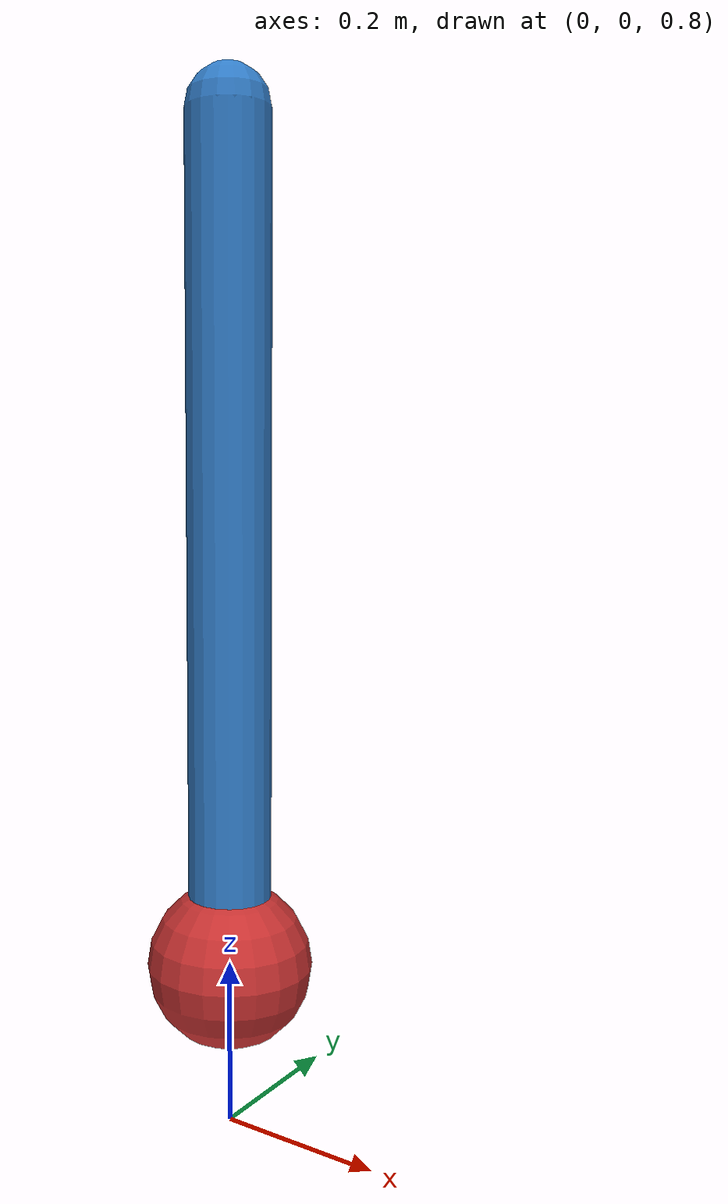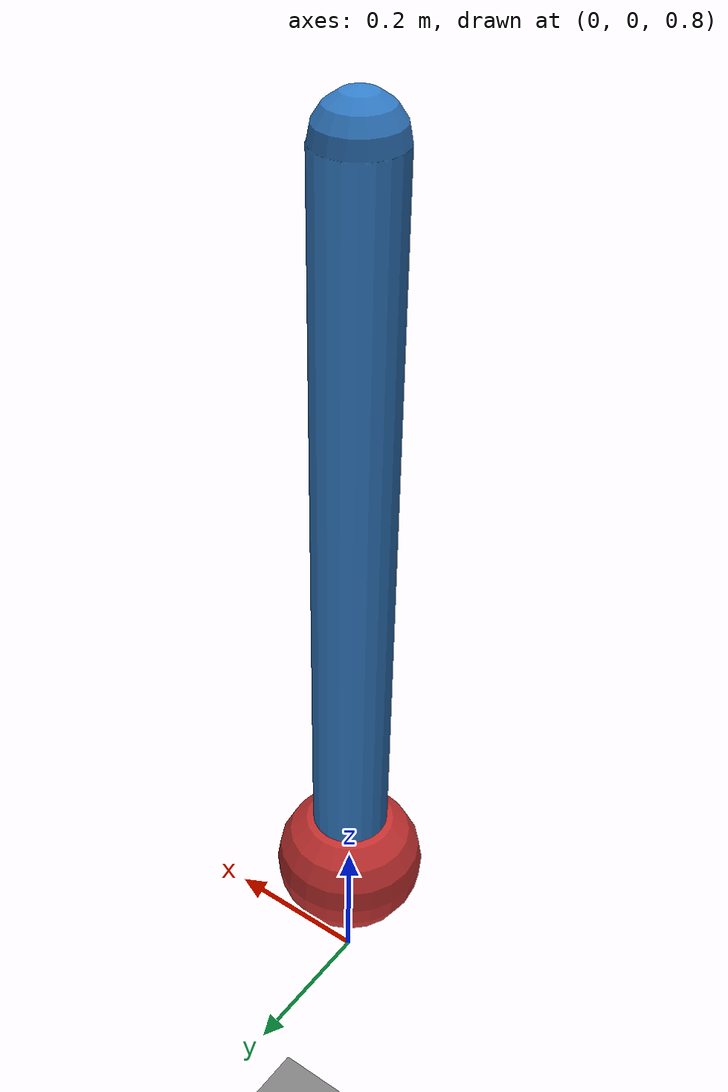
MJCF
<mujoco model="simple_pendulum">
    <compiler angle="radian" />

    <!-- Floor and lighting -->
    <include file="checker.xml" />

    <worldbody>
        <!-- Base of the pendulum -->
        <body name="base" pos="0 0 2">
            <!-- Hinge joint allowing rotation -->
            <joint name="hinge" type="hinge" pos="0 0 0" axis="0 1 0" />

            <!-- Pendulum rod -->
            <geom name="rod" type="capsule" fromto="0 0 0 0 0 -1" size="0.05" rgba="0.2 0.5 0.8 1" />

            <!-- End of pendulum (optional visual mass) -->
            <body name="tip" pos="0 0 -1">
                <geom name="tip_mass" type="sphere" size="0.1" pos="0 0 0" mass="0.1" rgba="0.8 0.2 0.2 1" />
            </body>
        </body>
    </worldbody>

    <actuator>
        <!-- Motor to apply torque at the hinge -->
        <motor name="hinge_motor" joint="hinge" />
    </actuator>
</mujoco>

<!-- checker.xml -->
<mujoco model="checker">

    <asset>
        <!-- Texture for the checkered floor -->
        <texture name="checkered" type="2d" builtin="checker" width="512" height="512"
                 rgb1="0.9 0.9 0.9" rgb2="0.1 0.1 0.1" />
        <material name="checkered_mat" texture="checkered" texrepeat="20 20"/>
    </asset>

    <worldbody>

        <!-- Default lighting -->
        <light name="light1" pos="0 0 3" dir="0 0 -1" diffuse="1 1 1" specular="0.3 0.3 0.3" />
        <light name="light2" pos="3 3 3" dir="-1 -1 -1" diffuse="0.8 0.8 0.8" specular="0.2 0.2 0.2" />

        <!-- Checkered Floor -->
        <geom name="floor" type="plane" pos="0 0 0" size="10 10 0.1" material="checkered_mat" />

    </worldbody>
</mujoco>
